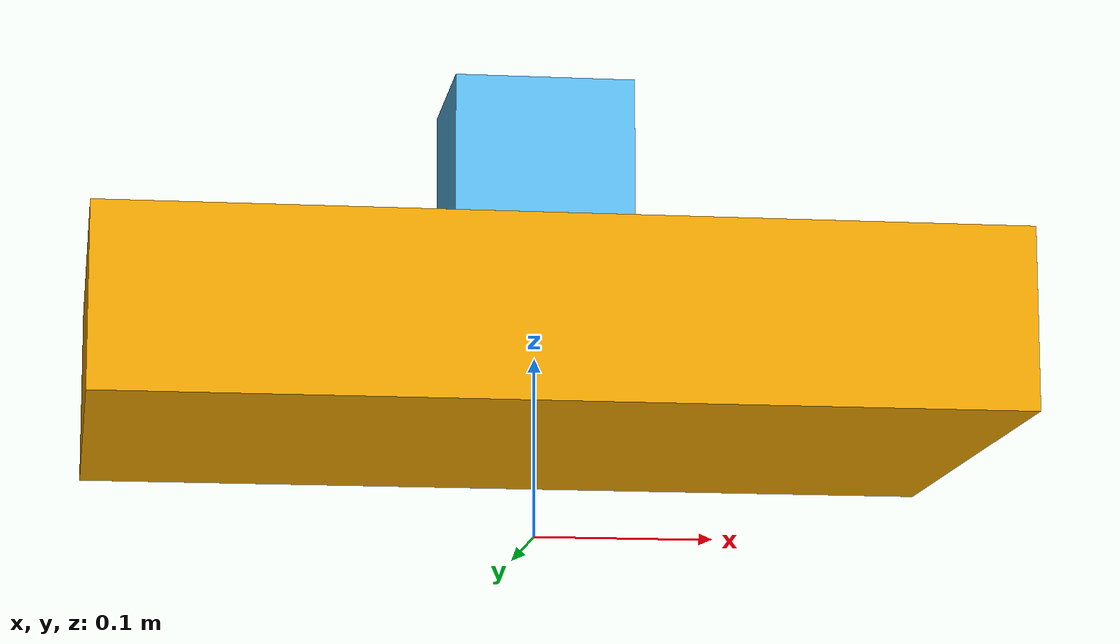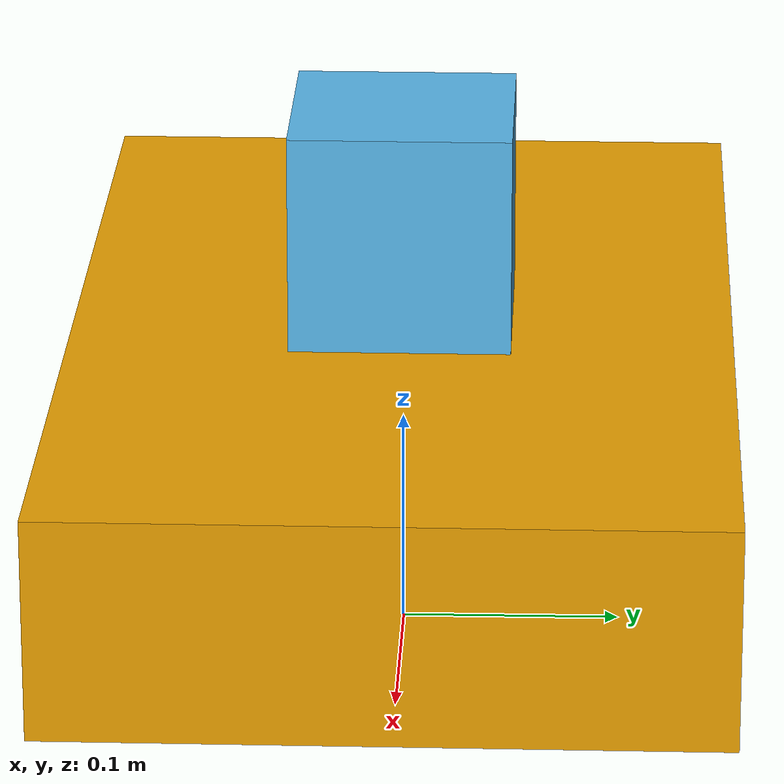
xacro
<?xml version="1.0"?>
<robot name="imu_lidar" xmlns:xacro="http://ros.org/wiki/xacro">

  <!-- Base link -->
  <link name="base_link">
    <visual>
      <origin xyz="0 0 0.1" rpy="0 0 0"/>
      <geometry>
        <box size="0.5 0.3 0.1"/>
      </geometry>
    </visual>
    <collision>
      <origin xyz="0 0 0.1" rpy="0 0 0"/>
      <geometry>
        <box size="0.5 0.3 0.1"/>
      </geometry>
    </collision>
    <inertial>
      <origin xyz="0 0 0.1" rpy="0 0 0"/>
      <mass value="5.0"/>
      <inertia ixx="0.083" ixy="0" ixz="0" iyy="0.083" iyz="0" izz="0.083"/>
    </inertial>
  </link>

    <link name="imu_link">
        <inertial>
            <origin xyz="0 0 0" />
            <mass value="0.01" />
            <inertia ixx="0.0001" ixy="0" ixz="0" iyy="0.0001" iyz="0" izz="0.0001" />
        </inertial>

        <visual>
            <origin xyz="0 0 0" />
            <geometry>
                <box size="0.1 0.1 0.1" />
            </geometry>
        </visual>
    </link>

    <joint name="imu_joint" type="fixed">
        <parent link="base_link" />
        <child link="imu_link" />
        <origin xyz="0 0 0.2" rpy="0 0 0" />
    </joint>

    <gazebo>
        <static>false</static>
    </gazebo>

    <!-- Gazebo plugin for IMU -->
    <gazebo reference="imu_link">
        <sensor name="my_imu" type="imu">
            <always_on>true</always_on>
            <plugin name="my_imu_plugin" filename="libgazebo_ros_imu_sensor.so">
                <topicName>/imu</topicName>
                <updateRateHZ>100</updateRateHZ>
                <frameName>imu_frame</frameName>
            </plugin>
        </sensor>
    </gazebo>

</robot>
